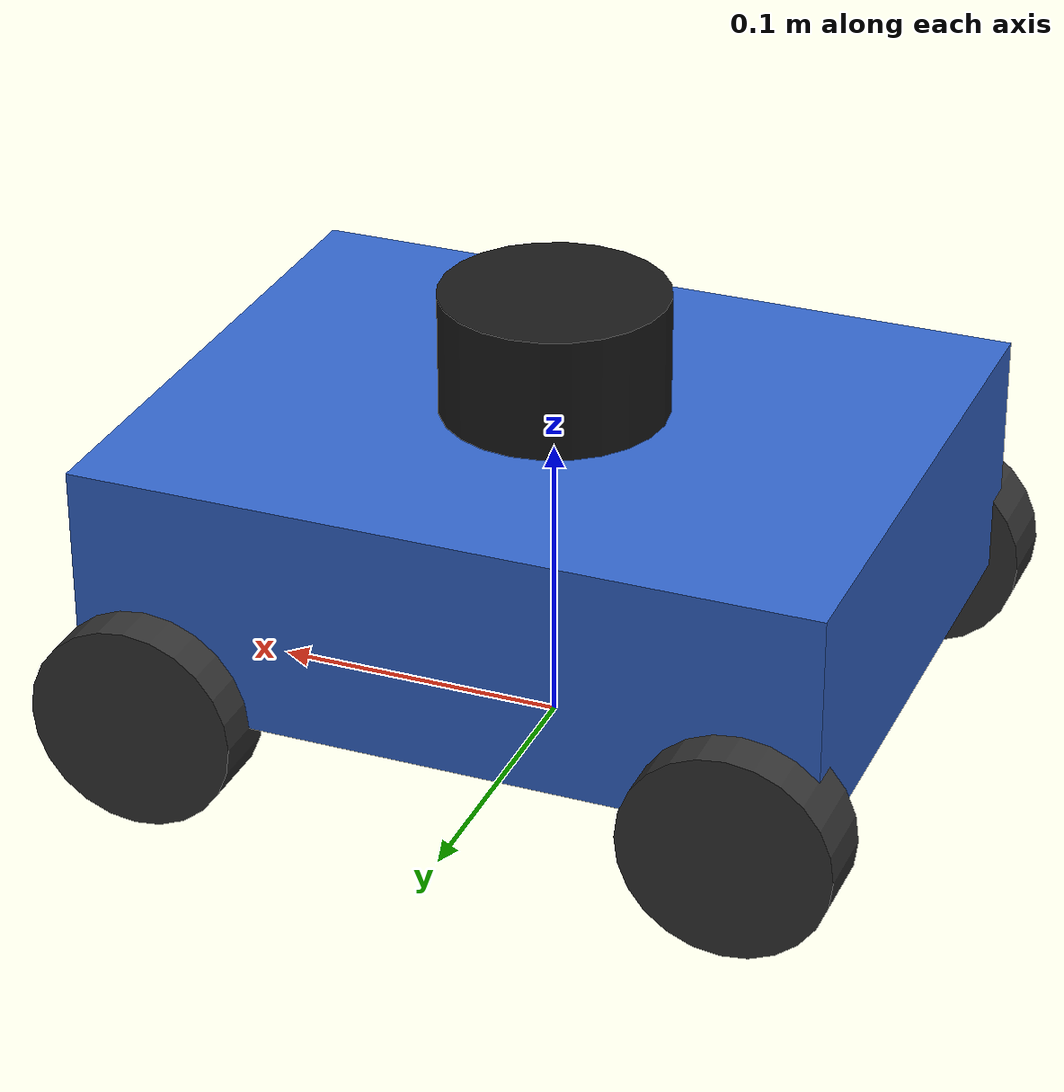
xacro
<?xml version="1.0"?>

<robot xmlns:xacro="http://www.ros.org/wiki/xacro" name="maze_robot">

  <!-- PROPERTIES: Define reusable parameters for easier modification        -->

  <!-- Robot dimensions (in meters) -->
  <xacro:property name="base_length" value="0.25"/>  <!-- Front to back -->
  <xacro:property name="base_width" value="0.20"/>   <!-- Left to right -->
  <xacro:property name="base_height" value="0.08"/>  <!-- Bottom to top of chassis -->
  <xacro:property name="base_mass" value="2.0"/>     <!-- Kilograms (includes battery, electronics) -->

  <!-- Wheel specifications for N20 motors with mecanum wheels -->
  <xacro:property name="wheel_radius" value="0.035"/>     <!-- 35mm radius (70mm diameter) -->
  <xacro:property name="wheel_width" value="0.025"/>      <!-- 25mm wide -->
  <xacro:property name="wheel_mass" value="0.05"/>        <!-- 50 grams per wheel -->
  <xacro:property name="wheel_separation_width" value="0.18"/>   <!-- Distance between left and right wheels -->
  <xacro:property name="wheel_separation_length" value="0.20"/>  <!-- Distance between front and back wheels -->

  <!-- LIDAR specifications (Slamtec RP LIDAR C1M1) -->
  <xacro:property name="lidar_radius" value="0.038"/>  <!-- 76mm diameter -->
  <xacro:property name="lidar_height" value="0.041"/>  <!-- 41mm tall -->
  <xacro:property name="lidar_mass" value="0.13"/>     <!-- 130 grams -->

  <!-- IMU specifications (BNO085) -->
  <xacro:property name="imu_size" value="0.025"/>      <!-- Small sensor, 25mm cube approximation -->
  <xacro:property name="imu_mass" value="0.01"/>       <!-- 10 grams -->

  <!-- PI value for calculations -->
  <xacro:property name="pi" value="3.14159265359"/>

  <!-- MACROS: Reusable components to reduce repetition                      -->

  <!-- Inertia matrix macro - calculates moment of inertia for boxes -->
  <!-- This is essential for accurate physics simulation -->
  <xacro:macro name="box_inertia" params="m x y z">
    <inertia
      ixx="${m * (y*y + z*z) / 12.0}" ixy="0.0" ixz="0.0"
      iyy="${m * (x*x + z*z) / 12.0}" iyz="0.0"
      izz="${m * (x*x + y*y) / 12.0}"/>
  </xacro:macro>

  <!-- Inertia matrix for cylinders (wheels, LIDAR) -->
  <xacro:macro name="cylinder_inertia" params="m r h">
    <inertia
      ixx="${m * (3*r*r + h*h) / 12.0}" ixy="0.0" ixz="0.0"
      iyy="${m * (3*r*r + h*h) / 12.0}" iyz="0.0"
      izz="${m * r*r / 2.0}"/>
  </xacro:macro>

  <!-- Wheel macro - creates a complete wheel link and joint -->
  <!-- Parameters:
       prefix - wheel name (front_left, front_right, rear_left, rear_right)
       x_reflect - 1 for front, -1 for rear
       y_reflect - 1 for left, -1 for right
  -->
  <xacro:macro name="wheel" params="prefix x_reflect y_reflect">

    <!-- Wheel link - the physical wheel -->
    <link name="${prefix}_wheel_link">
      <!-- Visual representation (what you see in RViz) -->
      <visual>
        <origin xyz="0 0 0" rpy="${pi/2} 0 0"/>
        <geometry>
          <cylinder radius="${wheel_radius}" length="${wheel_width}"/>
        </geometry>
        <material name="black">
          <color rgba="0.2 0.2 0.2 1.0"/>
        </material>
      </visual>

      <!-- Collision geometry (for obstacle detection) -->
      <collision>
        <origin xyz="0 0 0" rpy="${pi/2} 0 0"/>
        <geometry>
          <cylinder radius="${wheel_radius}" length="${wheel_width}"/>
        </geometry>
      </collision>

      <!-- Inertial properties (mass and moment of inertia) -->
      <inertial>
        <origin xyz="0 0 0" rpy="${pi/2} 0 0"/>
        <mass value="${wheel_mass}"/>
        <xacro:cylinder_inertia m="${wheel_mass}" r="${wheel_radius}" h="${wheel_width}"/>
      </inertial>
    </link>

    <!-- Wheel joint - connects wheel to chassis -->
    <!-- continuous joint = can rotate infinitely (wheels spin freely) -->
    <joint name="${prefix}_wheel_joint" type="continuous">
      <parent link="base_link"/>
      <child link="${prefix}_wheel_link"/>
      <!-- Position wheel at corner of robot -->
      <origin xyz="${x_reflect * wheel_separation_length/2}
                   ${y_reflect * (wheel_separation_width/2 + wheel_width/2)}
                   0"
              rpy="0 0 0"/>
      <!-- Rotation axis (wheels rotate around Y-axis in their local frame) -->
      <axis xyz="0 1 0"/>
      <!-- Joint limits and dynamics -->
      <limit effort="10.0" velocity="5.0"/>  <!-- N20 motors: 500 RPM ≈ 5 rad/s at wheel -->
      <dynamics damping="0.1" friction="0.1"/>
    </joint>

  </xacro:macro>

  <!-- ROBOT BASE STRUCTURE                                                   -->

  <!-- Base footprint - virtual link at ground level for navigation -->
  <!-- This is the reference point for the robot's position in the world -->
  <link name="base_footprint"/>

  <!-- Joint connecting footprint to actual base -->
  <joint name="base_footprint_joint" type="fixed">
    <parent link="base_footprint"/>
    <child link="base_link"/>
    <!-- Elevate base_link by wheel radius so footprint touches ground -->
    <origin xyz="0 0 ${wheel_radius}" rpy="0 0 0"/>
  </joint>

  <!-- Base link - main chassis of the robot -->
  <link name="base_link">
    <!-- Visual representation -->
    <visual>
      <origin xyz="0 0 ${base_height/2}" rpy="0 0 0"/>
      <geometry>
        <box size="${base_length} ${base_width} ${base_height}"/>
      </geometry>
      <material name="blue">
        <color rgba="0.2 0.4 0.8 1.0"/>
      </material>
    </visual>

    <!-- Collision geometry -->
    <collision>
      <origin xyz="0 0 ${base_height/2}" rpy="0 0 0"/>
      <geometry>
        <box size="${base_length} ${base_width} ${base_height}"/>
      </geometry>
    </collision>

    <!-- Inertial properties -->
    <inertial>
      <origin xyz="0 0 ${base_height/2}" rpy="0 0 0"/>
      <mass value="${base_mass}"/>
      <xacro:box_inertia m="${base_mass}" x="${base_length}" y="${base_width}" z="${base_height}"/>
    </inertial>
  </link>

  <!-- WHEELS - Create all four mecanum wheels                               -->

  <xacro:wheel prefix="front_left"  x_reflect="1"  y_reflect="1"/>
  <xacro:wheel prefix="front_right" x_reflect="1"  y_reflect="-1"/>
  <xacro:wheel prefix="rear_left"   x_reflect="-1" y_reflect="1"/>
  <xacro:wheel prefix="rear_right"  x_reflect="-1" y_reflect="-1"/>

  <!-- LIDAR SENSOR                                                           -->

  <!-- LIDAR link - mounted on top center of robot -->
  <link name="lidar_link">
    <visual>
      <origin xyz="0 0 0" rpy="0 0 0"/>
      <geometry>
        <cylinder radius="${lidar_radius}" length="${lidar_height}"/>
      </geometry>
      <material name="black">
        <color rgba="0.1 0.1 0.1 1.0"/>
      </material>
    </visual>

    <collision>
      <origin xyz="0 0 0" rpy="0 0 0"/>
      <geometry>
        <cylinder radius="${lidar_radius}" length="${lidar_height}"/>
      </geometry>
    </collision>

    <inertial>
      <origin xyz="0 0 0" rpy="0 0 0"/>
      <mass value="${lidar_mass}"/>
      <xacro:cylinder_inertia m="${lidar_mass}" r="${lidar_radius}" h="${lidar_height}"/>
    </inertial>
  </link>

  <!-- LIDAR joint - fixed to base, positioned on top -->
  <joint name="lidar_joint" type="fixed">
    <parent link="base_link"/>
    <child link="lidar_link"/>
    <!-- Position: center top of chassis + half LIDAR height -->
    <origin xyz="0 0 ${base_height + lidar_height/2}" rpy="0 0 0"/>
  </joint>

  <!-- IMU SENSOR (BNO085)                                                    -->

  <!-- IMU link - mounted inside chassis -->
  <link name="imu_link">
    <visual>
      <origin xyz="0 0 0" rpy="0 0 0"/>
      <geometry>
        <box size="${imu_size} ${imu_size} ${imu_size}"/>
      </geometry>
      <material name="green">
        <color rgba="0.0 0.8 0.2 1.0"/>
      </material>
    </visual>

    <collision>
      <origin xyz="0 0 0" rpy="0 0 0"/>
      <geometry>
        <box size="${imu_size} ${imu_size} ${imu_size}"/>
      </geometry>
    </collision>

    <inertial>
      <origin xyz="0 0 0" rpy="0 0 0"/>
      <mass value="${imu_mass}"/>
      <xacro:box_inertia m="${imu_mass}" x="${imu_size}" y="${imu_size}" z="${imu_size}"/>
    </inertial>
  </link>

  <!-- IMU joint - fixed to base, positioned at center of mass -->
  <joint name="imu_joint" type="fixed">
    <parent link="base_link"/>
    <child link="imu_link"/>
    <!-- Position at geometric center of chassis for best measurements -->
    <origin xyz="0 0 ${base_height/2}" rpy="0 0 0"/>
  </joint>

</robot>
